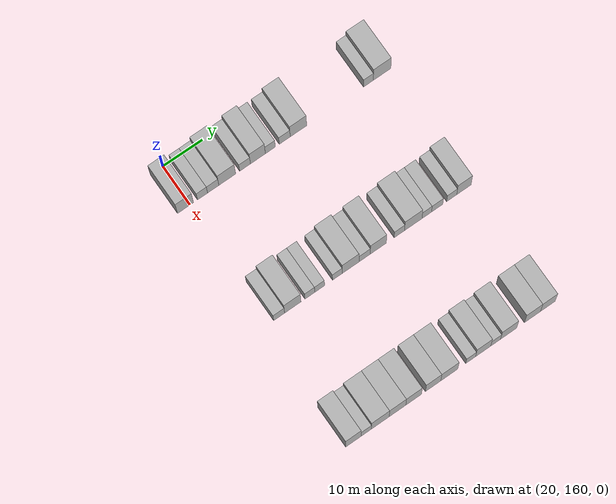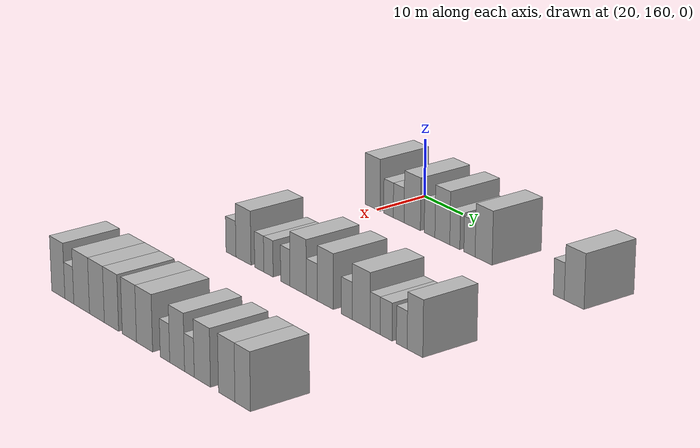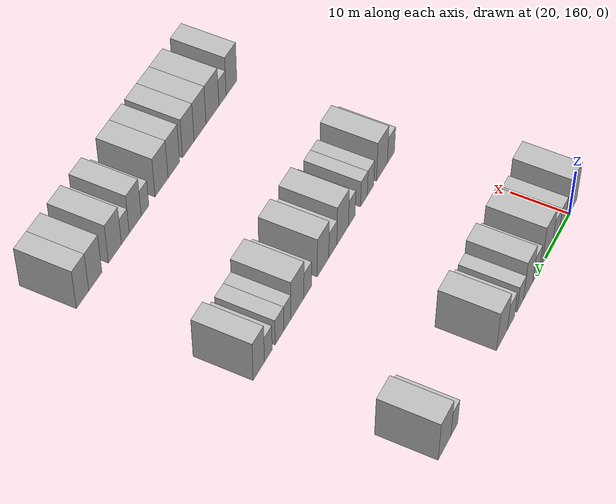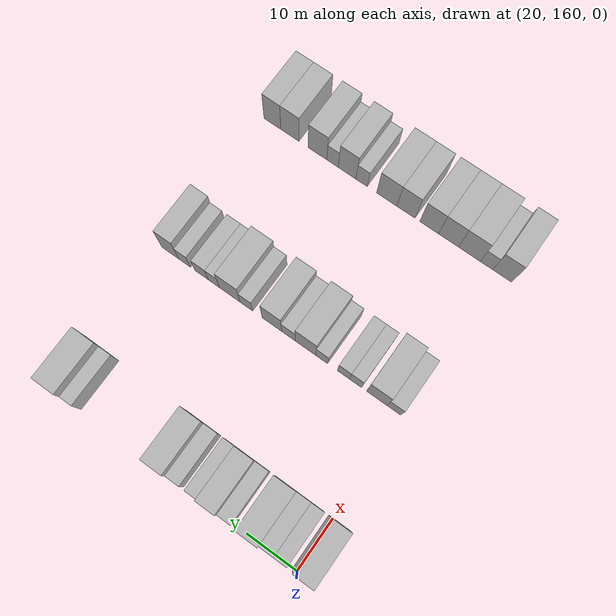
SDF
<sdf version="1.6">
 <world name="default">
  <model name="building_150">
   <static>1</static>
   <pose>25.0000 158.8576 0 0.000000 0.000000 0.000000</pose>
   <link name="link">
    <pose>0 0 4.50 0 0 0</pose>
    <collision name="collision"><geometry><box><size>10.0000 4.0396 9.0000</size></box></geometry></collision>
    <visual name="visual">
     <cast_shadows>0</cast_shadows>
     <geometry><box><size>10.0000 4.0396 9.0000</size></box></geometry>
     <material>
      <script>
       <uri>model://HANNAS_wall/materials/scripts</uri>
       <uri>model://HANNAS_wall/materials/textures</uri>
       <name>vrc/HANNAS_wall</name>
      </script>
     </material>
    </visual>
   </link>
  </model>
  <model name="building_151">
   <static>1</static>
   <pose>25.0000 163.1474 0 0.000000 0.000000 0.000000</pose>
   <link name="link">
    <pose>0 0 3.00 0 0 0</pose>
    <collision name="collision"><geometry><box><size>10.0000 2.5400 6.0000</size></box></geometry></collision>
    <visual name="visual">
     <cast_shadows>0</cast_shadows>
     <geometry><box><size>10.0000 2.5400 6.0000</size></box></geometry>
     <material>
      <script>
       <uri>model://HANNAS_wall/materials/scripts</uri>
       <uri>model://HANNAS_wall/materials/textures</uri>
       <name>vrc/HANNAS_wall</name>
      </script>
     </material>
    </visual>
   </link>
  </model>
  <model name="building_152">
   <static>1</static>
   <pose>25.0000 165.8415 0 0.000000 0.000000 0.000000</pose>
   <link name="link">
    <pose>0 0 3.00 0 0 0</pose>
    <collision name="collision"><geometry><box><size>10.0000 2.8482 6.0000</size></box></geometry></collision>
    <visual name="visual">
     <cast_shadows>0</cast_shadows>
     <geometry><box><size>10.0000 2.8482 6.0000</size></box></geometry>
     <material>
      <script>
       <uri>model://HANNAS_wall/materials/scripts</uri>
       <uri>model://HANNAS_wall/materials/textures</uri>
       <name>vrc/HANNAS_wall</name>
      </script>
     </material>
    </visual>
   </link>
  </model>
  <model name="building_153">
   <static>1</static>
   <pose>25.0000 169.3904 0 0.000000 0.000000 0.000000</pose>
   <link name="link">
    <pose>0 0 4.50 0 0 0</pose>
    <collision name="collision"><geometry><box><size>10.0000 4.2497 9.0000</size></box></geometry></collision>
    <visual name="visual">
     <cast_shadows>0</cast_shadows>
     <geometry><box><size>10.0000 4.2497 9.0000</size></box></geometry>
     <material>
      <script>
       <uri>model://HANNAS_wall/materials/scripts</uri>
       <uri>model://HANNAS_wall/materials/textures</uri>
       <name>vrc/HANNAS_wall</name>
      </script>
     </material>
    </visual>
   </link>
  </model>
  <model name="building_154">
   <static>1</static>
   <pose>25.0000 173.8834 0 0.000000 0.000000 0.000000</pose>
   <link name="link">
    <pose>0 0 3.00 0 0 0</pose>
    <collision name="collision"><geometry><box><size>10.0000 2.7362 6.0000</size></box></geometry></collision>
    <visual name="visual">
     <cast_shadows>0</cast_shadows>
     <geometry><box><size>10.0000 2.7362 6.0000</size></box></geometry>
     <material>
      <script>
       <uri>model://HANNAS_wall/materials/scripts</uri>
       <uri>model://HANNAS_wall/materials/textures</uri>
       <name>vrc/HANNAS_wall</name>
      </script>
     </material>
    </visual>
   </link>
  </model>
  <model name="building_155">
   <static>1</static>
   <pose>25.0000 177.1405 0 0.000000 0.000000 0.000000</pose>
   <link name="link">
    <pose>0 0 4.50 0 0 0</pose>
    <collision name="collision"><geometry><box><size>10.0000 3.7781 9.0000</size></box></geometry></collision>
    <visual name="visual">
     <cast_shadows>0</cast_shadows>
     <geometry><box><size>10.0000 3.7781 9.0000</size></box></geometry>
     <material>
      <script>
       <uri>model://HANNAS_wall/materials/scripts</uri>
       <uri>model://HANNAS_wall/materials/textures</uri>
       <name>vrc/HANNAS_wall</name>
      </script>
     </material>
    </visual>
   </link>
  </model>
  <model name="building_156">
   <static>1</static>
   <pose>25.0000 180.2931 0 0.000000 0.000000 0.000000</pose>
   <link name="link">
    <pose>0 0 3.00 0 0 0</pose>
    <collision name="collision"><geometry><box><size>10.0000 2.5272 6.0000</size></box></geometry></collision>
    <visual name="visual">
     <cast_shadows>0</cast_shadows>
     <geometry><box><size>10.0000 2.5272 6.0000</size></box></geometry>
     <material>
      <script>
       <uri>model://HANNAS_wall/materials/scripts</uri>
       <uri>model://HANNAS_wall/materials/textures</uri>
       <name>vrc/HANNAS_wall</name>
      </script>
     </material>
    </visual>
   </link>
  </model>
  <model name="building_157">
   <static>1</static>
   <pose>25.0000 183.9488 0 0.000000 0.000000 0.000000</pose>
   <link name="link">
    <pose>0 0 3.00 0 0 0</pose>
    <collision name="collision"><geometry><box><size>10.0000 2.7842 6.0000</size></box></geometry></collision>
    <visual name="visual">
     <cast_shadows>0</cast_shadows>
     <geometry><box><size>10.0000 2.7842 6.0000</size></box></geometry>
     <material>
      <script>
       <uri>model://HANNAS_wall/materials/scripts</uri>
       <uri>model://HANNAS_wall/materials/textures</uri>
       <name>vrc/HANNAS_wall</name>
      </script>
     </material>
    </visual>
   </link>
  </model>
  <model name="building_158">
   <static>1</static>
   <pose>25.0000 187.4299 0 0.000000 0.000000 0.000000</pose>
   <link name="link">
    <pose>0 0 4.50 0 0 0</pose>
    <collision name="collision"><geometry><box><size>10.0000 4.1778 9.0000</size></box></geometry></collision>
    <visual name="visual">
     <cast_shadows>0</cast_shadows>
     <geometry><box><size>10.0000 4.1778 9.0000</size></box></geometry>
     <material>
      <script>
       <uri>model://HANNAS_wall/materials/scripts</uri>
       <uri>model://HANNAS_wall/materials/textures</uri>
       <name>vrc/HANNAS_wall</name>
      </script>
     </material>
    </visual>
   </link>
  </model>
  <model name="building_159">
   <static>1</static>
   <pose>25.0000 205.2669 0 0.000000 0.000000 0.000000</pose>
   <link name="link">
    <pose>0 0 3.00 0 0 0</pose>
    <collision name="collision"><geometry><box><size>10.0000 2.4988 6.0000</size></box></geometry></collision>
    <visual name="visual">
     <cast_shadows>0</cast_shadows>
     <geometry><box><size>10.0000 2.4988 6.0000</size></box></geometry>
     <material>
      <script>
       <uri>model://HANNAS_wall/materials/scripts</uri>
       <uri>model://HANNAS_wall/materials/textures</uri>
       <name>vrc/HANNAS_wall</name>
      </script>
     </material>
    </visual>
   </link>
  </model>
  <model name="building_160">
   <static>1</static>
   <pose>25.0000 208.7616 0 0.000000 0.000000 0.000000</pose>
   <link name="link">
    <pose>0 0 4.50 0 0 0</pose>
    <collision name="collision"><geometry><box><size>10.0000 4.4907 9.0000</size></box></geometry></collision>
    <visual name="visual">
     <cast_shadows>0</cast_shadows>
     <geometry><box><size>10.0000 4.4907 9.0000</size></box></geometry>
     <material>
      <script>
       <uri>model://HANNAS_wall/materials/scripts</uri>
       <uri>model://HANNAS_wall/materials/textures</uri>
       <name>vrc/HANNAS_wall</name>
      </script>
     </material>
    </visual>
   </link>
  </model>
  <model name="building_361">
   <static>1</static>
   <pose>55.0000 161.7404 0 0.000000 0.000000 0.000000</pose>
   <link name="link">
    <pose>0 0 3.00 0 0 0</pose>
    <collision name="collision"><geometry><box><size>10.0000 2.7527 6.0000</size></box></geometry></collision>
    <visual name="visual">
     <cast_shadows>0</cast_shadows>
     <geometry><box><size>10.0000 2.7527 6.0000</size></box></geometry>
     <material>
      <script>
       <uri>model://HANNAS_wall/materials/scripts</uri>
       <uri>model://HANNAS_wall/materials/textures</uri>
       <name>vrc/HANNAS_wall</name>
      </script>
     </material>
    </visual>
   </link>
  </model>
  <model name="building_362">
   <static>1</static>
   <pose>55.0000 165.1720 0 0.000000 0.000000 0.000000</pose>
   <link name="link">
    <pose>0 0 4.50 0 0 0</pose>
    <collision name="collision"><geometry><box><size>10.0000 4.1106 9.0000</size></box></geometry></collision>
    <visual name="visual">
     <cast_shadows>0</cast_shadows>
     <geometry><box><size>10.0000 4.1106 9.0000</size></box></geometry>
     <material>
      <script>
       <uri>model://HANNAS_wall/materials/scripts</uri>
       <uri>model://HANNAS_wall/materials/textures</uri>
       <name>vrc/HANNAS_wall</name>
      </script>
     </material>
    </visual>
   </link>
  </model>
  <model name="building_363">
   <static>1</static>
   <pose>55.0000 169.4560 0 0.000000 0.000000 0.000000</pose>
   <link name="link">
    <pose>0 0 3.00 0 0 0</pose>
    <collision name="collision"><geometry><box><size>10.0000 2.4574 6.0000</size></box></geometry></collision>
    <visual name="visual">
     <cast_shadows>0</cast_shadows>
     <geometry><box><size>10.0000 2.4574 6.0000</size></box></geometry>
     <material>
      <script>
       <uri>model://HANNAS_wall/materials/scripts</uri>
       <uri>model://HANNAS_wall/materials/textures</uri>
       <name>vrc/HANNAS_wall</name>
      </script>
     </material>
    </visual>
   </link>
  </model>
  <model name="building_364">
   <static>1</static>
   <pose>55.0000 171.9251 0 0.000000 0.000000 0.000000</pose>
   <link name="link">
    <pose>0 0 3.00 0 0 0</pose>
    <collision name="collision"><geometry><box><size>10.0000 2.4808 6.0000</size></box></geometry></collision>
    <visual name="visual">
     <cast_shadows>0</cast_shadows>
     <geometry><box><size>10.0000 2.4808 6.0000</size></box></geometry>
     <material>
      <script>
       <uri>model://HANNAS_wall/materials/scripts</uri>
       <uri>model://HANNAS_wall/materials/textures</uri>
       <name>vrc/HANNAS_wall</name>
      </script>
     </material>
    </visual>
   </link>
  </model>
  <model name="building_365">
   <static>1</static>
   <pose>55.0000 176.3856 0 0.000000 0.000000 0.000000</pose>
   <link name="link">
    <pose>0 0 3.00 0 0 0</pose>
    <collision name="collision"><geometry><box><size>10.0000 2.4402 6.0000</size></box></geometry></collision>
    <visual name="visual">
     <cast_shadows>0</cast_shadows>
     <geometry><box><size>10.0000 2.4402 6.0000</size></box></geometry>
     <material>
      <script>
       <uri>model://HANNAS_wall/materials/scripts</uri>
       <uri>model://HANNAS_wall/materials/textures</uri>
       <name>vrc/HANNAS_wall</name>
      </script>
     </material>
    </visual>
   </link>
  </model>
  <model name="building_366">
   <static>1</static>
   <pose>55.0000 179.7207 0 0.000000 0.000000 0.000000</pose>
   <link name="link">
    <pose>0 0 4.50 0 0 0</pose>
    <collision name="collision"><geometry><box><size>10.0000 4.2301 9.0000</size></box></geometry></collision>
    <visual name="visual">
     <cast_shadows>0</cast_shadows>
     <geometry><box><size>10.0000 4.2301 9.0000</size></box></geometry>
     <material>
      <script>
       <uri>model://HANNAS_wall/materials/scripts</uri>
       <uri>model://HANNAS_wall/materials/textures</uri>
       <name>vrc/HANNAS_wall</name>
      </script>
     </material>
    </visual>
   </link>
  </model>
  <model name="building_367">
   <static>1</static>
   <pose>55.0000 183.2664 0 0.000000 0.000000 0.000000</pose>
   <link name="link">
    <pose>0 0 3.00 0 0 0</pose>
    <collision name="collision"><geometry><box><size>10.0000 2.8613 6.0000</size></box></geometry></collision>
    <visual name="visual">
     <cast_shadows>0</cast_shadows>
     <geometry><box><size>10.0000 2.8613 6.0000</size></box></geometry>
     <material>
      <script>
       <uri>model://HANNAS_wall/materials/scripts</uri>
       <uri>model://HANNAS_wall/materials/textures</uri>
       <name>vrc/HANNAS_wall</name>
      </script>
     </material>
    </visual>
   </link>
  </model>
  <model name="building_368">
   <static>1</static>
   <pose>55.0000 186.7286 0 0.000000 0.000000 0.000000</pose>
   <link name="link">
    <pose>0 0 4.50 0 0 0</pose>
    <collision name="collision"><geometry><box><size>10.0000 4.0630 9.0000</size></box></geometry></collision>
    <visual name="visual">
     <cast_shadows>0</cast_shadows>
     <geometry><box><size>10.0000 4.0630 9.0000</size></box></geometry>
     <material>
      <script>
       <uri>model://HANNAS_wall/materials/scripts</uri>
       <uri>model://HANNAS_wall/materials/textures</uri>
       <name>vrc/HANNAS_wall</name>
      </script>
     </material>
    </visual>
   </link>
  </model>
  <model name="building_369">
   <static>1</static>
   <pose>55.0000 192.0650 0 0.000000 0.000000 0.000000</pose>
   <link name="link">
    <pose>0 0 3.00 0 0 0</pose>
    <collision name="collision"><geometry><box><size>10.0000 2.6098 6.0000</size></box></geometry></collision>
    <visual name="visual">
     <cast_shadows>0</cast_shadows>
     <geometry><box><size>10.0000 2.6098 6.0000</size></box></geometry>
     <material>
      <script>
       <uri>model://HANNAS_wall/materials/scripts</uri>
       <uri>model://HANNAS_wall/materials/textures</uri>
       <name>vrc/HANNAS_wall</name>
      </script>
     </material>
    </visual>
   </link>
  </model>
  <model name="building_370">
   <static>1</static>
   <pose>55.0000 195.5898 0 0.000000 0.000000 0.000000</pose>
   <link name="link">
    <pose>0 0 4.50 0 0 0</pose>
    <collision name="collision"><geometry><box><size>10.0000 4.4398 9.0000</size></box></geometry></collision>
    <visual name="visual">
     <cast_shadows>0</cast_shadows>
     <geometry><box><size>10.0000 4.4398 9.0000</size></box></geometry>
     <material>
      <script>
       <uri>model://HANNAS_wall/materials/scripts</uri>
       <uri>model://HANNAS_wall/materials/textures</uri>
       <name>vrc/HANNAS_wall</name>
      </script>
     </material>
    </visual>
   </link>
  </model>
  <model name="building_371">
   <static>1</static>
   <pose>55.0000 199.0234 0 0.000000 0.000000 0.000000</pose>
   <link name="link">
    <pose>0 0 3.00 0 0 0</pose>
    <collision name="collision"><geometry><box><size>10.0000 2.4275 6.0000</size></box></geometry></collision>
    <visual name="visual">
     <cast_shadows>0</cast_shadows>
     <geometry><box><size>10.0000 2.4275 6.0000</size></box></geometry>
     <material>
      <script>
       <uri>model://HANNAS_wall/materials/scripts</uri>
       <uri>model://HANNAS_wall/materials/textures</uri>
       <name>vrc/HANNAS_wall</name>
      </script>
     </material>
    </visual>
   </link>
  </model>
  <model name="building_372">
   <static>1</static>
   <pose>55.0000 201.6690 0 0.000000 0.000000 0.000000</pose>
   <link name="link">
    <pose>0 0 3.00 0 0 0</pose>
    <collision name="collision"><geometry><box><size>10.0000 2.8637 6.0000</size></box></geometry></collision>
    <visual name="visual">
     <cast_shadows>0</cast_shadows>
     <geometry><box><size>10.0000 2.8637 6.0000</size></box></geometry>
     <material>
      <script>
       <uri>model://HANNAS_wall/materials/scripts</uri>
       <uri>model://HANNAS_wall/materials/textures</uri>
       <name>vrc/HANNAS_wall</name>
      </script>
     </material>
    </visual>
   </link>
  </model>
  <model name="building_373">
   <static>1</static>
   <pose>55.0000 205.3737 0 0.000000 0.000000 0.000000</pose>
   <link name="link">
    <pose>0 0 3.00 0 0 0</pose>
    <collision name="collision"><geometry><box><size>10.0000 2.5455 6.0000</size></box></geometry></collision>
    <visual name="visual">
     <cast_shadows>0</cast_shadows>
     <geometry><box><size>10.0000 2.5455 6.0000</size></box></geometry>
     <material>
      <script>
       <uri>model://HANNAS_wall/materials/scripts</uri>
       <uri>model://HANNAS_wall/materials/textures</uri>
       <name>vrc/HANNAS_wall</name>
      </script>
     </material>
    </visual>
   </link>
  </model>
  <model name="building_374">
   <static>1</static>
   <pose>55.0000 208.4768 0 0.000000 0.000000 0.000000</pose>
   <link name="link">
    <pose>0 0 4.50 0 0 0</pose>
    <collision name="collision"><geometry><box><size>10.0000 3.6607 9.0000</size></box></geometry></collision>
    <visual name="visual">
     <cast_shadows>0</cast_shadows>
     <geometry><box><size>10.0000 3.6607 9.0000</size></box></geometry>
     <material>
      <script>
       <uri>model://HANNAS_wall/materials/scripts</uri>
       <uri>model://HANNAS_wall/materials/textures</uri>
       <name>vrc/HANNAS_wall</name>
      </script>
     </material>
    </visual>
   </link>
  </model>
  <model name="building_595">
   <static>1</static>
   <pose>85.0000 159.4413 0 0.000000 0.000000 0.000000</pose>
   <link name="link">
    <pose>0 0 4.50 0 0 0</pose>
    <collision name="collision"><geometry><box><size>10.0000 3.8387 9.0000</size></box></geometry></collision>
    <visual name="visual">
     <cast_shadows>0</cast_shadows>
     <geometry><box><size>10.0000 3.8387 9.0000</size></box></geometry>
     <material>
      <script>
       <uri>model://HANNAS_wall/materials/scripts</uri>
       <uri>model://HANNAS_wall/materials/textures</uri>
       <name>vrc/HANNAS_wall</name>
      </script>
     </material>
    </visual>
   </link>
  </model>
  <model name="building_596">
   <static>1</static>
   <pose>85.0000 162.6453 0 0.000000 0.000000 0.000000</pose>
   <link name="link">
    <pose>0 0 3.00 0 0 0</pose>
    <collision name="collision"><geometry><box><size>10.0000 2.5693 6.0000</size></box></geometry></collision>
    <visual name="visual">
     <cast_shadows>0</cast_shadows>
     <geometry><box><size>10.0000 2.5693 6.0000</size></box></geometry>
     <material>
      <script>
       <uri>model://HANNAS_wall/materials/scripts</uri>
       <uri>model://HANNAS_wall/materials/textures</uri>
       <name>vrc/HANNAS_wall</name>
      </script>
     </material>
    </visual>
   </link>
  </model>
  <model name="building_597">
   <static>1</static>
   <pose>85.0000 166.1668 0 0.000000 0.000000 0.000000</pose>
   <link name="link">
    <pose>0 0 4.50 0 0 0</pose>
    <collision name="collision"><geometry><box><size>10.0000 4.4737 9.0000</size></box></geometry></collision>
    <visual name="visual">
     <cast_shadows>0</cast_shadows>
     <geometry><box><size>10.0000 4.4737 9.0000</size></box></geometry>
     <material>
      <script>
       <uri>model://HANNAS_wall/materials/scripts</uri>
       <uri>model://HANNAS_wall/materials/textures</uri>
       <name>vrc/HANNAS_wall</name>
      </script>
     </material>
    </visual>
   </link>
  </model>
  <model name="building_598">
   <static>1</static>
   <pose>85.0000 170.4797 0 0.000000 0.000000 0.000000</pose>
   <link name="link">
    <pose>0 0 4.50 0 0 0</pose>
    <collision name="collision"><geometry><box><size>10.0000 4.1521 9.0000</size></box></geometry></collision>
    <visual name="visual">
     <cast_shadows>0</cast_shadows>
     <geometry><box><size>10.0000 4.1521 9.0000</size></box></geometry>
     <material>
      <script>
       <uri>model://HANNAS_wall/materials/scripts</uri>
       <uri>model://HANNAS_wall/materials/textures</uri>
       <name>vrc/HANNAS_wall</name>
      </script>
     </material>
    </visual>
   </link>
  </model>
  <model name="building_599">
   <static>1</static>
   <pose>85.0000 174.5205 0 0.000000 0.000000 0.000000</pose>
   <link name="link">
    <pose>0 0 4.50 0 0 0</pose>
    <collision name="collision"><geometry><box><size>10.0000 3.9295 9.0000</size></box></geometry></collision>
    <visual name="visual">
     <cast_shadows>0</cast_shadows>
     <geometry><box><size>10.0000 3.9295 9.0000</size></box></geometry>
     <material>
      <script>
       <uri>model://HANNAS_wall/materials/scripts</uri>
       <uri>model://HANNAS_wall/materials/textures</uri>
       <name>vrc/HANNAS_wall</name>
      </script>
     </material>
    </visual>
   </link>
  </model>
  <model name="building_600">
   <static>1</static>
   <pose>85.0000 179.4094 0 0.000000 0.000000 0.000000</pose>
   <link name="link">
    <pose>0 0 4.50 0 0 0</pose>
    <collision name="collision"><geometry><box><size>10.0000 3.8484 9.0000</size></box></geometry></collision>
    <visual name="visual">
     <cast_shadows>0</cast_shadows>
     <geometry><box><size>10.0000 3.8484 9.0000</size></box></geometry>
     <material>
      <script>
       <uri>model://HANNAS_wall/materials/scripts</uri>
       <uri>model://HANNAS_wall/materials/textures</uri>
       <name>vrc/HANNAS_wall</name>
      </script>
     </material>
    </visual>
   </link>
  </model>
  <model name="building_601">
   <static>1</static>
   <pose>85.0000 183.4863 0 0.000000 0.000000 0.000000</pose>
   <link name="link">
    <pose>0 0 4.50 0 0 0</pose>
    <collision name="collision"><geometry><box><size>10.0000 4.3054 9.0000</size></box></geometry></collision>
    <visual name="visual">
     <cast_shadows>0</cast_shadows>
     <geometry><box><size>10.0000 4.3054 9.0000</size></box></geometry>
     <material>
      <script>
       <uri>model://HANNAS_wall/materials/scripts</uri>
       <uri>model://HANNAS_wall/materials/textures</uri>
       <name>vrc/HANNAS_wall</name>
      </script>
     </material>
    </visual>
   </link>
  </model>
  <model name="building_602">
   <static>1</static>
   <pose>85.0000 188.8788 0 0.000000 0.000000 0.000000</pose>
   <link name="link">
    <pose>0 0 3.00 0 0 0</pose>
    <collision name="collision"><geometry><box><size>10.0000 2.4796 6.0000</size></box></geometry></collision>
    <visual name="visual">
     <cast_shadows>0</cast_shadows>
     <geometry><box><size>10.0000 2.4796 6.0000</size></box></geometry>
     <material>
      <script>
       <uri>model://HANNAS_wall/materials/scripts</uri>
       <uri>model://HANNAS_wall/materials/textures</uri>
       <name>vrc/HANNAS_wall</name>
      </script>
     </material>
    </visual>
   </link>
  </model>
  <model name="building_603">
   <static>1</static>
   <pose>85.0000 192.0339 0 0.000000 0.000000 0.000000</pose>
   <link name="link">
    <pose>0 0 4.50 0 0 0</pose>
    <collision name="collision"><geometry><box><size>10.0000 3.8305 9.0000</size></box></geometry></collision>
    <visual name="visual">
     <cast_shadows>0</cast_shadows>
     <geometry><box><size>10.0000 3.8305 9.0000</size></box></geometry>
     <material>
      <script>
       <uri>model://HANNAS_wall/materials/scripts</uri>
       <uri>model://HANNAS_wall/materials/textures</uri>
       <name>vrc/HANNAS_wall</name>
      </script>
     </material>
    </visual>
   </link>
  </model>
  <model name="building_604">
   <static>1</static>
   <pose>85.0000 195.1815 0 0.000000 0.000000 0.000000</pose>
   <link name="link">
    <pose>0 0 3.00 0 0 0</pose>
    <collision name="collision"><geometry><box><size>10.0000 2.4648 6.0000</size></box></geometry></collision>
    <visual name="visual">
     <cast_shadows>0</cast_shadows>
     <geometry><box><size>10.0000 2.4648 6.0000</size></box></geometry>
     <material>
      <script>
       <uri>model://HANNAS_wall/materials/scripts</uri>
       <uri>model://HANNAS_wall/materials/textures</uri>
       <name>vrc/HANNAS_wall</name>
      </script>
     </material>
    </visual>
   </link>
  </model>
  <model name="building_605">
   <static>1</static>
   <pose>85.0000 198.4558 0 0.000000 0.000000 0.000000</pose>
   <link name="link">
    <pose>0 0 4.50 0 0 0</pose>
    <collision name="collision"><geometry><box><size>10.0000 4.0837 9.0000</size></box></geometry></collision>
    <visual name="visual">
     <cast_shadows>0</cast_shadows>
     <geometry><box><size>10.0000 4.0837 9.0000</size></box></geometry>
     <material>
      <script>
       <uri>model://HANNAS_wall/materials/scripts</uri>
       <uri>model://HANNAS_wall/materials/textures</uri>
       <name>vrc/HANNAS_wall</name>
      </script>
     </material>
    </visual>
   </link>
  </model>
  <model name="building_606">
   <static>1</static>
   <pose>85.0000 204.5168 0 0.000000 0.000000 0.000000</pose>
   <link name="link">
    <pose>0 0 4.50 0 0 0</pose>
    <collision name="collision"><geometry><box><size>10.0000 4.0382 9.0000</size></box></geometry></collision>
    <visual name="visual">
     <cast_shadows>0</cast_shadows>
     <geometry><box><size>10.0000 4.0382 9.0000</size></box></geometry>
     <material>
      <script>
       <uri>model://HANNAS_wall/materials/scripts</uri>
       <uri>model://HANNAS_wall/materials/textures</uri>
       <name>vrc/HANNAS_wall</name>
      </script>
     </material>
    </visual>
   </link>
  </model>
  <model name="building_607">
   <static>1</static>
   <pose>85.0000 208.4080 0 0.000000 0.000000 0.000000</pose>
   <link name="link">
    <pose>0 0 4.50 0 0 0</pose>
    <collision name="collision"><geometry><box><size>10.0000 3.7443 9.0000</size></box></geometry></collision>
    <visual name="visual">
     <cast_shadows>0</cast_shadows>
     <geometry><box><size>10.0000 3.7443 9.0000</size></box></geometry>
     <material>
      <script>
       <uri>model://HANNAS_wall/materials/scripts</uri>
       <uri>model://HANNAS_wall/materials/textures</uri>
       <name>vrc/HANNAS_wall</name>
      </script>
     </material>
    </visual>
   </link>
  </model>
 </world>
</sdf>
